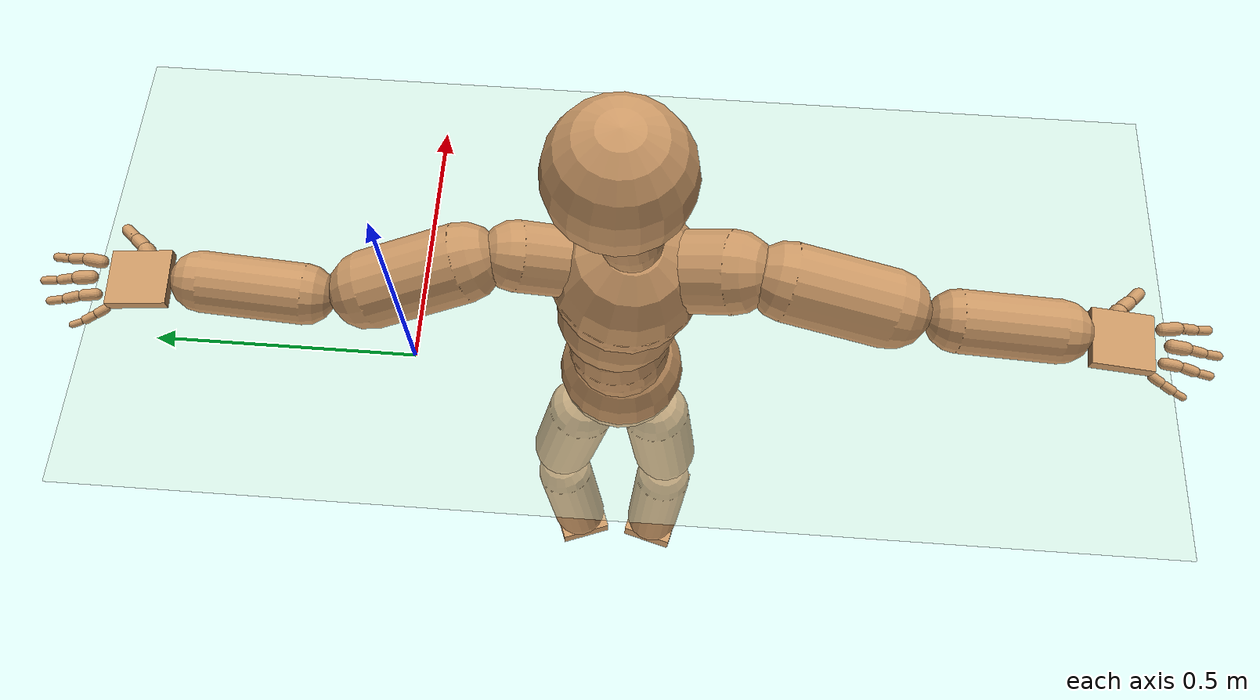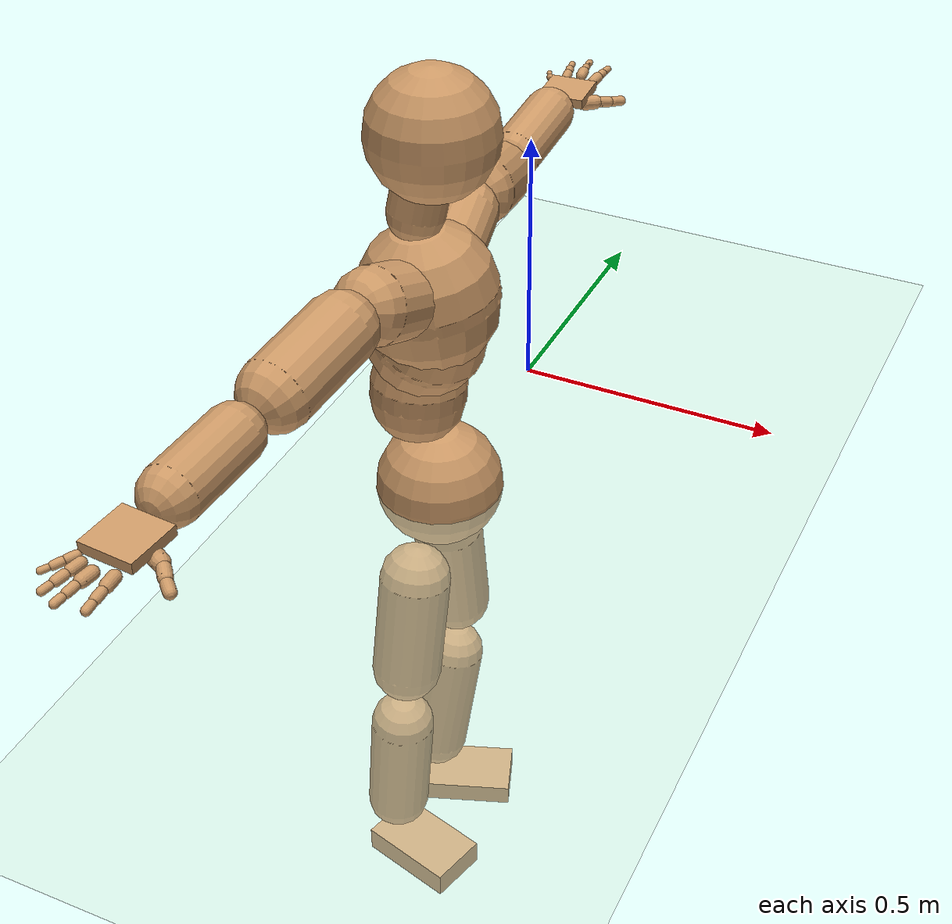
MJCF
<mujoco model="humanoid">
  <compiler coordinate="local" angle="radian"/>
  <default>
    <joint damping="0.0" armature="0.01" stiffness="0.0" limited="true"/>
    <geom conaffinity="1" condim="3" contype="7" margin="0.001" rgba="0.8 0.6 .4 1"/>
  </default>
  <asset>
    <texture type="skybox" builtin="gradient" rgb1=".4 .5 .6" rgb2="0 0 0" width="100" height="100"/>
    <texture builtin="flat" height="1278" mark="cross" markrgb="1 1 1" name="texgeom" random="0.01" rgb1="0.8 0.6 0.4" rgb2="0.8 0.6 0.4" type="cube" width="127"/>
    <texture builtin="checker" height="100" name="texplane" rgb1="0 0 0" rgb2="0.8 0.8 0.8" type="2d" width="100"/>
    <material name="MatPlane" reflectance="0.5" shininess="1" specular="1" texrepeat="60 60" texture="texplane"/>
    <material name="geom" texture="texgeom" texuniform="true"/>
  </asset>
  <worldbody>
    <light cutoff="100" diffuse="1 1 1" dir="-0 0 -1.3" directional="true" exponent="1" pos="0 0 1.3" specular=".1 .1 .1"/>
    <geom conaffinity="1" condim="3" name="floor" pos="0 0 0" rgba="0.8 0.9 0.8 1" size="100 100 .2" type="plane" material="MatPlane"/>
    <body name="Pelvis" pos="0.0017 -0.3938 0.0051">
      <freejoint name="Pelvis"/>
      <geom type="sphere" contype="1" conaffinity="1" density="500" size="0.1154" pos="0.0000 0.0000 0.0000" name="Pelvis"/>
      <body name="L_Hip" pos="-0.0233 0.062 -0.0989">
        <joint name="L_Hip_x" type="hinge" pos="0 0 0" axis="1 0 0" stiffness="800" damping="80" armature="0.02" range="-180.0000 180.0000"/>
        <joint name="L_Hip_y" type="hinge" pos="0 0 0" axis="0 1 0" stiffness="800" damping="80" armature="0.02" range="-180.0000 180.0000"/>
        <joint name="L_Hip_z" type="hinge" pos="0 0 0" axis="0 0 1" stiffness="800" damping="80" armature="0.02" range="-180.0000 180.0000"/>
        <geom type="capsule" contype="1" conaffinity="1" density="500" fromto="-0.0015 0.0132 -0.0726 -0.0061 0.0529 -0.2902" size="0.0659" name="L_Hip"/>
        <body name="L_Knee" pos="-0.0076 0.0662 -0.3628">
          <joint name="L_Knee_x" type="hinge" pos="0 0 0" axis="1 0 0" stiffness="800" damping="80" armature="0.02" range="-180.0000 180.0000"/>
          <joint name="L_Knee_y" type="hinge" pos="0 0 0" axis="0 1 0" stiffness="800" damping="80" armature="0.02" range="-180.0000 180.0000"/>
          <joint name="L_Knee_z" type="hinge" pos="0 0 0" axis="0 0 1" stiffness="800" damping="80" armature="0.02" range="-180.0000 180.0000"/>
          <geom type="capsule" contype="1" conaffinity="1" density="500" fromto="-0.0088 -0.0107 -0.0791 -0.0351 -0.0427 -0.3165" size="0.0608" name="L_Knee"/>
          <body name="L_Ankle" pos="-0.0438 -0.0534 -0.3956">
            <joint name="L_Ankle_x" type="hinge" pos="0 0 0" axis="1 0 0" stiffness="800" damping="80" armature="0.02" range="-180.0000 180.0000"/>
            <joint name="L_Ankle_y" type="hinge" pos="0 0 0" axis="0 1 0" stiffness="800" damping="80" armature="0.02" range="-180.0000 180.0000"/>
            <joint name="L_Ankle_z" type="hinge" pos="0 0 0" axis="0 0 1" stiffness="800" damping="80" armature="0.02" range="-180.0000 180.0000"/>
            <geom type="box" contype="1" conaffinity="1" density="500" pos="0.0683 0.0250 -0.0285" size="0.0962 0.0574 0.0222" quat="0.9847 0.0000 0.0000 0.1744" name="L_Ankle"/>
            <body name="L_Toe" pos="0.1367 0.05 -0.057">
              <joint name="L_Toe_x" type="hinge" pos="0 0 0" axis="1 0 0" stiffness="500" damping="50" armature="0.02" range="-180.0000 180.0000"/>
              <joint name="L_Toe_y" type="hinge" pos="0 0 0" axis="0 1 0" stiffness="500" damping="50" armature="0.02" range="-180.0000 180.0000"/>
              <joint name="L_Toe_z" type="hinge" pos="0 0 0" axis="0 0 1" stiffness="500" damping="50" armature="0.02" range="-180.0000 180.0000"/>
              <geom type="box" contype="1" conaffinity="1" density="500" pos="0.0000 0.0000 0.0292" size="0.0011 0.0027 0.0011" quat="0.9840 0.0000 0.0000 0.1784" name="L_Toe"/>
            </body>
          </body>
        </body>
      </body>
      <body name="R_Hip" pos="-0.0146 -0.0646 -0.11">
        <joint name="R_Hip_x" type="hinge" pos="0 0 0" axis="1 0 0" stiffness="800" damping="80" armature="0.02" range="-180.0000 180.0000"/>
        <joint name="R_Hip_y" type="hinge" pos="0 0 0" axis="0 1 0" stiffness="800" damping="80" armature="0.02" range="-180.0000 180.0000"/>
        <joint name="R_Hip_z" type="hinge" pos="0 0 0" axis="0 0 1" stiffness="800" damping="80" armature="0.02" range="-180.0000 180.0000"/>
        <geom type="capsule" contype="1" conaffinity="1" density="500" fromto="-0.0034 -0.0096 -0.0693 -0.0135 -0.0383 -0.2773" size="0.0659" name="R_Hip"/>
        <body name="R_Knee" pos="-0.0169 -0.0478 -0.3467">
          <joint name="R_Knee_x" type="hinge" pos="0 0 0" axis="1 0 0" stiffness="800" damping="80" armature="0.02" range="-180.0000 180.0000"/>
          <joint name="R_Knee_y" type="hinge" pos="0 0 0" axis="0 1 0" stiffness="800" damping="80" armature="0.02" range="-180.0000 180.0000"/>
          <joint name="R_Knee_z" type="hinge" pos="0 0 0" axis="0 0 1" stiffness="800" damping="80" armature="0.02" range="-180.0000 180.0000"/>
          <geom type="capsule" contype="1" conaffinity="1" density="500" fromto="-0.0086 0.0041 -0.0815 -0.0344 0.0165 -0.3262" size="0.0608" name="R_Knee"/>
          <body name="R_Ankle" pos="-0.043 0.0207 -0.4077">
            <joint name="R_Ankle_x" type="hinge" pos="0 0 0" axis="1 0 0" stiffness="800" damping="80" armature="0.02" range="-180.0000 180.0000"/>
            <joint name="R_Ankle_y" type="hinge" pos="0 0 0" axis="0 1 0" stiffness="800" damping="80" armature="0.02" range="-180.0000 180.0000"/>
            <joint name="R_Ankle_z" type="hinge" pos="0 0 0" axis="0 0 1" stiffness="800" damping="80" armature="0.02" range="-180.0000 180.0000"/>
            <geom type="box" contype="1" conaffinity="1" density="500" pos="0.0718 -0.0195 -0.0279" size="0.0962 0.0574 0.0264" quat="0.9913 0.0000 0.0000 -0.1318" name="R_Ankle"/>
            <body name="R_Toe" pos="0.1437 -0.0389 -0.0559">
              <joint name="R_Toe_x" type="hinge" pos="0 0 0" axis="1 0 0" stiffness="500" damping="50" armature="0.02" range="-180.0000 180.0000"/>
              <joint name="R_Toe_y" type="hinge" pos="0 0 0" axis="0 1 0" stiffness="500" damping="50" armature="0.02" range="-180.0000 180.0000"/>
              <joint name="R_Toe_z" type="hinge" pos="0 0 0" axis="0 0 1" stiffness="500" damping="50" armature="0.02" range="-180.0000 180.0000"/>
              <geom type="box" contype="1" conaffinity="1" density="500" pos="0.0000 0.0000 0.0245" size="0.0011 0.0027 0.0011" quat="0.9923 0.0000 0.0000 -0.1238" name="R_Toe"/>
            </body>
          </body>
        </body>
      </body>
      <body name="Torso" pos="-0.0417 -0.0018 0.1127">
        <joint name="Torso_x" type="hinge" pos="0 0 0" axis="1 0 0" stiffness="1000" damping="100" armature="0.02" range="-180.0000 180.0000"/>
        <joint name="Torso_y" type="hinge" pos="0 0 0" axis="0 1 0" stiffness="1000" damping="100" armature="0.02" range="-180.0000 180.0000"/>
        <joint name="Torso_z" type="hinge" pos="0 0 0" axis="0 0 1" stiffness="1000" damping="100" armature="0.02" range="-180.0000 180.0000"/>
        <geom type="capsule" contype="1" conaffinity="1" density="500" fromto="0.0030 0.0087 0.0959 0.0020 0.0058 0.0640" size="0.086" name="Torso"/>
        <body name="Spine" pos="0.0049 0.0145 0.1599">
          <joint name="Spine_x" type="hinge" pos="0 0 0" axis="1 0 0" stiffness="1000" damping="100" armature="0.02" range="-180.0000 180.0000"/>
          <joint name="Spine_y" type="hinge" pos="0 0 0" axis="0 1 0" stiffness="1000" damping="100" armature="0.02" range="-180.0000 180.0000"/>
          <joint name="Spine_z" type="hinge" pos="0 0 0" axis="0 0 1" stiffness="1000" damping="100" armature="0.02" range="-180.0000 180.0000"/>
          <geom type="capsule" contype="1" conaffinity="1" density="500" fromto="0.0199 -0.0068 0.0380 0.0132 -0.0045 0.0253" size="0.104" name="Spine"/>
          <body name="Chest" pos="0.0331 -0.0113 0.0633">
            <joint name="Chest_x" type="hinge" pos="0 0 0" axis="1 0 0" stiffness="1000" damping="100" armature="0.02" range="-180.0000 180.0000"/>
            <joint name="Chest_y" type="hinge" pos="0 0 0" axis="0 1 0" stiffness="1000" damping="100" armature="0.02" range="-180.0000 180.0000"/>
            <joint name="Chest_z" type="hinge" pos="0 0 0" axis="0 0 1" stiffness="1000" damping="100" armature="0.02" range="-180.0000 180.0000"/>
            <geom type="capsule" contype="1" conaffinity="1" density="500" fromto="-0.0076 -0.0041 0.0668 -0.0051 -0.0028 0.0445" size="0.1212" name="Chest"/>
            <body name="Neck" pos="-0.0296 -0.0128 0.1734">
              <joint name="Neck_x" type="hinge" pos="0 0 0" axis="1 0 0" stiffness="500" damping="50" armature="0.02" range="-180.0000 180.0000"/>
              <joint name="Neck_y" type="hinge" pos="0 0 0" axis="0 1 0" stiffness="500" damping="50" armature="0.02" range="-180.0000 180.0000"/>
              <joint name="Neck_z" type="hinge" pos="0 0 0" axis="0 0 1" stiffness="500" damping="50" armature="0.02" range="-180.0000 180.0000"/>
              <geom type="capsule" contype="1" conaffinity="1" density="500" fromto="0.0057 0.0053 0.0338 0.0227 0.0212 0.1354" size="0.049" name="Neck"/>
              <body name="Head" pos="0.0283 0.0266 0.1692">
                <joint name="Head_x" type="hinge" pos="0 0 0" axis="1 0 0" stiffness="500" damping="50" armature="0.02" range="-180.0000 180.0000"/>
                <joint name="Head_y" type="hinge" pos="0 0 0" axis="0 1 0" stiffness="500" damping="50" armature="0.02" range="-180.0000 180.0000"/>
                <joint name="Head_z" type="hinge" pos="0 0 0" axis="0 0 1" stiffness="500" damping="50" armature="0.02" range="-180.0000 180.0000"/>
                <geom type="sphere" contype="1" conaffinity="1" density="500" size="0.1115" pos="0.0000 0.0000 0.0000" name="Head"/>
              </body>
            </body>
            <body name="L_Thorax" pos="-0.0028 0.045 0.0796">
              <joint name="L_Thorax_x" type="hinge" pos="0 0 0" axis="1 0 0" stiffness="500" damping="50" armature="0.02" range="-180.0000 180.0000"/>
              <joint name="L_Thorax_y" type="hinge" pos="0 0 0" axis="0 1 0" stiffness="500" damping="50" armature="0.02" range="-180.0000 180.0000"/>
              <joint name="L_Thorax_z" type="hinge" pos="0 0 0" axis="0 0 1" stiffness="500" damping="50" armature="0.02" range="-180.0000 180.0000"/>
              <geom type="capsule" contype="1" conaffinity="1" density="500" fromto="-0.0038 0.0307 0.0110 -0.0152 0.1228 0.0440" size="0.0558" name="L_Thorax"/>
              <body name="L_Shoulder" pos="-0.0189 0.1535 0.055">
                <joint name="L_Shoulder_x" type="hinge" pos="0 0 0" axis="1 0 0" stiffness="500" damping="50" armature="0.02" range="-180.0000 180.0000"/>
                <joint name="L_Shoulder_y" type="hinge" pos="0 0 0" axis="0 1 0" stiffness="500" damping="50" armature="0.02" range="-180.0000 180.0000"/>
                <joint name="L_Shoulder_z" type="hinge" pos="0 0 0" axis="0 0 1" stiffness="500" damping="50" armature="0.02" range="-180.0000 180.0000"/>
                <geom type="capsule" contype="1" conaffinity="1" density="500" fromto="-0.0111 0.0492 -0.0154 -0.0446 0.1969 -0.0618" size="0.0629" name="L_Shoulder"/>
                <body name="L_Elbow" pos="-0.0557 0.2461 -0.0772">
                  <joint name="L_Elbow_x" type="hinge" pos="0 0 0" axis="1 0 0" stiffness="500" damping="50" armature="0.02" range="-720.0000 720.0000"/>
                  <joint name="L_Elbow_y" type="hinge" pos="0 0 0" axis="0 1 0" stiffness="500" damping="50" armature="0.02" range="-720.0000 720.0000"/>
                  <joint name="L_Elbow_z" type="hinge" pos="0 0 0" axis="0 0 1" stiffness="500" damping="50" armature="0.02" range="-720.0000 720.0000"/>
                  <geom type="capsule" contype="1" conaffinity="1" density="500" fromto="0.0006 0.0522 0.0060 0.0023 0.2089 0.0238" size="0.0486" name="L_Elbow"/>
                  <body name="L_Wrist" pos="0.0029 0.2611 0.0298">
                    <joint name="L_Wrist_x" type="hinge" pos="0 0 0" axis="1 0 0" stiffness="300" damping="30" armature="0.02" range="-180.0000 180.0000"/>
                    <joint name="L_Wrist_y" type="hinge" pos="0 0 0" axis="0 1 0" stiffness="300" damping="30" armature="0.02" range="-180.0000 180.0000"/>
                    <joint name="L_Wrist_z" type="hinge" pos="0 0 0" axis="0 0 1" stiffness="300" damping="30" armature="0.02" range="-180.0000 180.0000"/>
                    <geom type="box" contype="1" conaffinity="1" density="500" pos="-0.0036 0.0454 -0.0058" size="0.0466 0.0457 0.0092" quat="0.7342 0.0000 0.0000 -0.6790" name="L_Wrist"/>
                    <body name="L_Index1" pos="0.0224 0.1068 -0.0084">
                      <joint name="L_Index1_x" type="hinge" pos="0 0 0" axis="1 0 0" stiffness="100" damping="10" armature="0.02" range="-180.0000 180.0000"/>
                      <joint name="L_Index1_y" type="hinge" pos="0 0 0" axis="0 1 0" stiffness="100" damping="10" armature="0.02" range="-180.0000 180.0000"/>
                      <joint name="L_Index1_z" type="hinge" pos="0 0 0" axis="0 0 1" stiffness="100" damping="10" armature="0.02" range="-180.0000 180.0000"/>
                      <geom type="capsule" contype="1" conaffinity="1" density="500" fromto="0.0008 0.0068 0.0004 0.0031 0.0271 0.0018" size="0.0105" name="L_Index1"/>
                      <body name="L_Index2" pos="0.0039 0.0339 0.0022">
                        <joint name="L_Index2_x" type="hinge" pos="0 0 0" axis="1 0 0" stiffness="100" damping="10" armature="0.02" range="-180.0000 180.0000"/>
                        <joint name="L_Index2_y" type="hinge" pos="0 0 0" axis="0 1 0" stiffness="100" damping="10" armature="0.02" range="-180.0000 180.0000"/>
                        <joint name="L_Index2_z" type="hinge" pos="0 0 0" axis="0 0 1" stiffness="100" damping="10" armature="0.02" range="-180.0000 180.0000"/>
                        <geom type="capsule" contype="1" conaffinity="1" density="500" fromto="-0.0001 0.0047 -0.0005 -0.0003 0.0190 -0.0022" size="0.0084" name="L_Index2"/>
                        <body name="L_Index3" pos="-0.0003 0.0237 -0.0027">
                          <joint name="L_Index3_x" type="hinge" pos="0 0 0" axis="1 0 0" stiffness="100" damping="10" armature="0.02" range="-180.0000 180.0000"/>
                          <joint name="L_Index3_y" type="hinge" pos="0 0 0" axis="0 1 0" stiffness="100" damping="10" armature="0.02" range="-180.0000 180.0000"/>
                          <joint name="L_Index3_z" type="hinge" pos="0 0 0" axis="0 0 1" stiffness="100" damping="10" armature="0.02" range="-180.0000 180.0000"/>
                          <geom type="capsule" contype="1" conaffinity="1" density="500" fromto="0.0003 0.0051 -0.0001 0.0013 0.0206 -0.0006" size="0.0071" name="L_Index3"/>
                        </body>
                      </body>
                    </body>
                    <body name="L_Middle1" pos="-0.0048 0.1154 -0.0049">
                      <joint name="L_Middle1_x" type="hinge" pos="0 0 0" axis="1 0 0" stiffness="100" damping="10" armature="0.02" range="-180.0000 180.0000"/>
                      <joint name="L_Middle1_y" type="hinge" pos="0 0 0" axis="0 1 0" stiffness="100" damping="10" armature="0.02" range="-180.0000 180.0000"/>
                      <joint name="L_Middle1_z" type="hinge" pos="0 0 0" axis="0 0 1" stiffness="100" damping="10" armature="0.02" range="-180.0000 180.0000"/>
                      <geom type="capsule" contype="1" conaffinity="1" density="500" fromto="-0.0009 0.0065 0.0002 -0.0037 0.0259 0.0007" size="0.0107" name="L_Middle1"/>
                      <body name="L_Middle2" pos="-0.0046 0.0323 0.0009">
                        <joint name="L_Middle2_x" type="hinge" pos="0 0 0" axis="1 0 0" stiffness="100" damping="10" armature="0.02" range="-180.0000 180.0000"/>
                        <joint name="L_Middle2_y" type="hinge" pos="0 0 0" axis="0 1 0" stiffness="100" damping="10" armature="0.02" range="-180.0000 180.0000"/>
                        <joint name="L_Middle2_z" type="hinge" pos="0 0 0" axis="0 0 1" stiffness="100" damping="10" armature="0.02" range="-180.0000 180.0000"/>
                        <geom type="capsule" contype="1" conaffinity="1" density="500" fromto="-0.0009 0.0049 -0.0005 -0.0036 0.0197 -0.0021" size="0.0078" name="L_Middle2"/>
                        <body name="L_Middle3" pos="-0.0045 0.0246 -0.0026">
                          <joint name="L_Middle3_x" type="hinge" pos="0 0 0" axis="1 0 0" stiffness="100" damping="10" armature="0.02" range="-180.0000 180.0000"/>
                          <joint name="L_Middle3_y" type="hinge" pos="0 0 0" axis="0 1 0" stiffness="100" damping="10" armature="0.02" range="-180.0000 180.0000"/>
                          <joint name="L_Middle3_z" type="hinge" pos="0 0 0" axis="0 0 1" stiffness="100" damping="10" armature="0.02" range="-180.0000 180.0000"/>
                          <geom type="capsule" contype="1" conaffinity="1" density="500" fromto="-0.0005 0.0053 -0.0001 -0.0020 0.0213 -0.0005" size="0.0067" name="L_Middle3"/>
                        </body>
                      </body>
                    </body>
                    <body name="L_Pinky1" pos="-0.0512 0.0884 -0.015">
                      <joint name="L_Pinky1_x" type="hinge" pos="0 0 0" axis="1 0 0" stiffness="100" damping="10" armature="0.02" range="-180.0000 180.0000"/>
                      <joint name="L_Pinky1_y" type="hinge" pos="0 0 0" axis="0 1 0" stiffness="100" damping="10" armature="0.02" range="-180.0000 180.0000"/>
                      <joint name="L_Pinky1_z" type="hinge" pos="0 0 0" axis="0 0 1" stiffness="100" damping="10" armature="0.02" range="-180.0000 180.0000"/>
                      <geom type="capsule" contype="1" conaffinity="1" density="500" fromto="-0.0024 0.0035 -0.0004 -0.0098 0.0140 -0.0016" size="0.0075" name="L_Pinky1"/>
                      <body name="L_Pinky2" pos="-0.0122 0.0174 -0.002">
                        <joint name="L_Pinky2_x" type="hinge" pos="0 0 0" axis="1 0 0" stiffness="100" damping="10" armature="0.02" range="-180.0000 180.0000"/>
                        <joint name="L_Pinky2_y" type="hinge" pos="0 0 0" axis="0 1 0" stiffness="100" damping="10" armature="0.02" range="-180.0000 180.0000"/>
                        <joint name="L_Pinky2_z" type="hinge" pos="0 0 0" axis="0 0 1" stiffness="100" damping="10" armature="0.02" range="-180.0000 180.0000"/>
                        <geom type="capsule" contype="1" conaffinity="1" density="500" fromto="-0.0022 0.0034 -0.0005 -0.0089 0.0137 -0.0018" size="0.0071" name="L_Pinky2"/>
                        <body name="L_Pinky3" pos="-0.0112 0.0171 -0.0023">
                          <joint name="L_Pinky3_x" type="hinge" pos="0 0 0" axis="1 0 0" stiffness="100" damping="10" armature="0.02" range="-180.0000 180.0000"/>
                          <joint name="L_Pinky3_y" type="hinge" pos="0 0 0" axis="0 1 0" stiffness="100" damping="10" armature="0.02" range="-180.0000 180.0000"/>
                          <joint name="L_Pinky3_z" type="hinge" pos="0 0 0" axis="0 0 1" stiffness="100" damping="10" armature="0.02" range="-180.0000 180.0000"/>
                          <geom type="capsule" contype="1" conaffinity="1" density="500" fromto="-0.0018 0.0038 -0.0001 -0.0073 0.0153 -0.0002" size="0.0053" name="L_Pinky3"/>
                        </body>
                      </body>
                    </body>
                    <body name="L_Ring1" pos="-0.0322 0.1028 -0.0083">
                      <joint name="L_Ring1_x" type="hinge" pos="0 0 0" axis="1 0 0" stiffness="100" damping="10" armature="0.02" range="-180.0000 180.0000"/>
                      <joint name="L_Ring1_y" type="hinge" pos="0 0 0" axis="0 1 0" stiffness="100" damping="10" armature="0.02" range="-180.0000 180.0000"/>
                      <joint name="L_Ring1_z" type="hinge" pos="0 0 0" axis="0 0 1" stiffness="100" damping="10" armature="0.02" range="-180.0000 180.0000"/>
                      <geom type="capsule" contype="1" conaffinity="1" density="500" fromto="-0.0010 0.0060 0.0002 -0.0041 0.0241 0.0007" size="0.0091" name="L_Ring1"/>
                      <body name="L_Ring2" pos="-0.0051 0.0301 0.0009">
                        <joint name="L_Ring2_x" type="hinge" pos="0 0 0" axis="1 0 0" stiffness="100" damping="10" armature="0.02" range="-180.0000 180.0000"/>
                        <joint name="L_Ring2_y" type="hinge" pos="0 0 0" axis="0 1 0" stiffness="100" damping="10" armature="0.02" range="-180.0000 180.0000"/>
                        <joint name="L_Ring2_z" type="hinge" pos="0 0 0" axis="0 0 1" stiffness="100" damping="10" armature="0.02" range="-180.0000 180.0000"/>
                        <geom type="capsule" contype="1" conaffinity="1" density="500" fromto="-0.0014 0.0048 -0.0005 -0.0056 0.0193 -0.0020" size="0.0083" name="L_Ring2"/>
                        <body name="L_Ring3" pos="-0.0069 0.0242 -0.0025">
                          <joint name="L_Ring3_x" type="hinge" pos="0 0 0" axis="1 0 0" stiffness="100" damping="10" armature="0.02" range="-180.0000 180.0000"/>
                          <joint name="L_Ring3_y" type="hinge" pos="0 0 0" axis="0 1 0" stiffness="100" damping="10" armature="0.02" range="-180.0000 180.0000"/>
                          <joint name="L_Ring3_z" type="hinge" pos="0 0 0" axis="0 0 1" stiffness="100" damping="10" armature="0.02" range="-180.0000 180.0000"/>
                          <geom type="capsule" contype="1" conaffinity="1" density="500" fromto="-0.0010 0.0052 -0.0001 -0.0040 0.0209 -0.0004" size="0.0064" name="L_Ring3"/>
                        </body>
                      </body>
                    </body>
                    <body name="L_Thumb1" pos="0.0302 0.0403 -0.0219">
                      <joint name="L_Thumb1_x" type="hinge" pos="0 0 0" axis="1 0 0" stiffness="100" damping="10" armature="0.02" range="-180.0000 180.0000"/>
                      <joint name="L_Thumb1_y" type="hinge" pos="0 0 0" axis="0 1 0" stiffness="100" damping="10" armature="0.02" range="-180.0000 180.0000"/>
                      <joint name="L_Thumb1_z" type="hinge" pos="0 0 0" axis="0 0 1" stiffness="100" damping="10" armature="0.02" range="-180.0000 180.0000"/>
                      <geom type="capsule" contype="1" conaffinity="1" density="500" fromto="0.0058 0.0033 0.0005 0.0231 0.0133 0.0021" size="0.014" name="L_Thumb1"/>
                      <body name="L_Thumb2" pos="0.0289 0.0166 0.0026">
                        <joint name="L_Thumb2_x" type="hinge" pos="0 0 0" axis="1 0 0" stiffness="100" damping="10" armature="0.02" range="-180.0000 180.0000"/>
                        <joint name="L_Thumb2_y" type="hinge" pos="0 0 0" axis="0 1 0" stiffness="100" damping="10" armature="0.02" range="-180.0000 180.0000"/>
                        <joint name="L_Thumb2_z" type="hinge" pos="0 0 0" axis="0 0 1" stiffness="100" damping="10" armature="0.02" range="-180.0000 180.0000"/>
                        <geom type="capsule" contype="1" conaffinity="1" density="500" fromto="0.0035 0.0041 -0.0011 0.0140 0.0164 -0.0042" size="0.011" name="L_Thumb2"/>
                        <body name="L_Thumb3" pos="0.0175 0.0205 -0.0053">
                          <joint name="L_Thumb3_x" type="hinge" pos="0 0 0" axis="1 0 0" stiffness="100" damping="10" armature="0.02" range="-180.0000 180.0000"/>
                          <joint name="L_Thumb3_y" type="hinge" pos="0 0 0" axis="0 1 0" stiffness="100" damping="10" armature="0.02" range="-180.0000 180.0000"/>
                          <joint name="L_Thumb3_z" type="hinge" pos="0 0 0" axis="0 0 1" stiffness="100" damping="10" armature="0.02" range="-180.0000 180.0000"/>
                          <geom type="capsule" contype="1" conaffinity="1" density="500" fromto="0.0039 0.0045 -0.0007 0.0156 0.0180 -0.0026" size="0.0097" name="L_Thumb3"/>
                        </body>
                      </body>
                    </body>
                  </body>
                </body>
              </body>
            </body>
            <body name="R_Thorax" pos="-0.0056 -0.053 0.0807">
              <joint name="R_Thorax_x" type="hinge" pos="0 0 0" axis="1 0 0" stiffness="500" damping="50" armature="0.02" range="-180.0000 180.0000"/>
              <joint name="R_Thorax_y" type="hinge" pos="0 0 0" axis="0 1 0" stiffness="500" damping="50" armature="0.02" range="-180.0000 180.0000"/>
              <joint name="R_Thorax_z" type="hinge" pos="0 0 0" axis="0 0 1" stiffness="500" damping="50" armature="0.02" range="-180.0000 180.0000"/>
              <geom type="capsule" contype="1" conaffinity="1" density="500" fromto="-0.0042 -0.0282 0.0106 -0.0167 -0.1130 0.0424" size="0.0657" name="R_Thorax"/>
              <body name="R_Shoulder" pos="-0.0209 -0.1412 0.0531">
                <joint name="R_Shoulder_x" type="hinge" pos="0 0 0" axis="1 0 0" stiffness="500" damping="50" armature="0.02" range="-180.0000 180.0000"/>
                <joint name="R_Shoulder_y" type="hinge" pos="0 0 0" axis="0 1 0" stiffness="500" damping="50" armature="0.02" range="-180.0000 180.0000"/>
                <joint name="R_Shoulder_z" type="hinge" pos="0 0 0" axis="0 0 1" stiffness="500" damping="50" armature="0.02" range="-180.0000 180.0000"/>
                <geom type="capsule" contype="1" conaffinity="1" density="500" fromto="-0.0073 -0.0528 -0.0083 -0.0292 -0.2114 -0.0331" size="0.0623" name="R_Shoulder"/>
                <body name="R_Elbow" pos="-0.0365 -0.2642 -0.0414">
                  <joint name="R_Elbow_x" type="hinge" pos="0 0 0" axis="1 0 0" stiffness="500" damping="50" armature="0.02" range="-720.0000 720.0000"/>
                  <joint name="R_Elbow_y" type="hinge" pos="0 0 0" axis="0 1 0" stiffness="500" damping="50" armature="0.02" range="-720.0000 720.0000"/>
                  <joint name="R_Elbow_z" type="hinge" pos="0 0 0" axis="0 0 1" stiffness="500" damping="50" armature="0.02" range="-720.0000 720.0000"/>
                  <geom type="capsule" contype="1" conaffinity="1" density="500" fromto="-0.0021 -0.0508 -0.0002 -0.0085 -0.2033 -0.0010" size="0.0497" name="R_Elbow"/>
                  <body name="R_Wrist" pos="-0.0106 -0.2542 -0.0012">
                    <joint name="R_Wrist_x" type="hinge" pos="0 0 0" axis="1 0 0" stiffness="300" damping="30" armature="0.02" range="-180.0000 180.0000"/>
                    <joint name="R_Wrist_y" type="hinge" pos="0 0 0" axis="0 1 0" stiffness="300" damping="30" armature="0.02" range="-180.0000 180.0000"/>
                    <joint name="R_Wrist_z" type="hinge" pos="0 0 0" axis="0 0 1" stiffness="300" damping="30" armature="0.02" range="-180.0000 180.0000"/>
                    <geom type="box" contype="1" conaffinity="1" density="500" pos="-0.0040 -0.0450 -0.0078" size="0.0466 0.0467 0.0094" quat="0.7380 0.0000 0.0000 0.6748" name="R_Wrist"/>
                    <body name="R_Index1" pos="0.0215 -0.1062 -0.0123">
                      <joint name="R_Index1_x" type="hinge" pos="0 0 0" axis="1 0 0" stiffness="100" damping="10" armature="0.02" range="-180.0000 180.0000"/>
                      <joint name="R_Index1_y" type="hinge" pos="0 0 0" axis="0 1 0" stiffness="100" damping="10" armature="0.02" range="-180.0000 180.0000"/>
                      <joint name="R_Index1_z" type="hinge" pos="0 0 0" axis="0 0 1" stiffness="100" damping="10" armature="0.02" range="-180.0000 180.0000"/>
                      <geom type="capsule" contype="1" conaffinity="1" density="500" fromto="0.0008 -0.0068 0.0004 0.0031 -0.0271 0.0018" size="0.0105" name="R_Index1"/>
                      <body name="R_Index2" pos="0.0039 -0.0339 0.0022">
                        <joint name="R_Index2_x" type="hinge" pos="0 0 0" axis="1 0 0" stiffness="100" damping="10" armature="0.02" range="-180.0000 180.0000"/>
                        <joint name="R_Index2_y" type="hinge" pos="0 0 0" axis="0 1 0" stiffness="100" damping="10" armature="0.02" range="-180.0000 180.0000"/>
                        <joint name="R_Index2_z" type="hinge" pos="0 0 0" axis="0 0 1" stiffness="100" damping="10" armature="0.02" range="-180.0000 180.0000"/>
                        <geom type="capsule" contype="1" conaffinity="1" density="500" fromto="-0.0001 -0.0047 -0.0005 -0.0003 -0.0190 -0.0022" size="0.0084" name="R_Index2"/>
                        <body name="R_Index3" pos="-0.0003 -0.0237 -0.0027">
                          <joint name="R_Index3_x" type="hinge" pos="0 0 0" axis="1 0 0" stiffness="100" damping="10" armature="0.02" range="-180.0000 180.0000"/>
                          <joint name="R_Index3_y" type="hinge" pos="0 0 0" axis="0 1 0" stiffness="100" damping="10" armature="0.02" range="-180.0000 180.0000"/>
                          <joint name="R_Index3_z" type="hinge" pos="0 0 0" axis="0 0 1" stiffness="100" damping="10" armature="0.02" range="-180.0000 180.0000"/>
                          <geom type="capsule" contype="1" conaffinity="1" density="500" fromto="0.0003 -0.0043 -0.0001 0.0013 -0.0174 -0.0006" size="0.0074" name="R_Index3"/>
                        </body>
                      </body>
                    </body>
                    <body name="R_Middle1" pos="-0.0057 -0.1147 -0.0089">
                      <joint name="R_Middle1_x" type="hinge" pos="0 0 0" axis="1 0 0" stiffness="100" damping="10" armature="0.02" range="-180.0000 180.0000"/>
                      <joint name="R_Middle1_y" type="hinge" pos="0 0 0" axis="0 1 0" stiffness="100" damping="10" armature="0.02" range="-180.0000 180.0000"/>
                      <joint name="R_Middle1_z" type="hinge" pos="0 0 0" axis="0 0 1" stiffness="100" damping="10" armature="0.02" range="-180.0000 180.0000"/>
                      <geom type="capsule" contype="1" conaffinity="1" density="500" fromto="-0.0009 -0.0065 0.0002 -0.0037 -0.0259 0.0007" size="0.0107" name="R_Middle1"/>
                      <body name="R_Middle2" pos="-0.0046 -0.0323 0.0009">
                        <joint name="R_Middle2_x" type="hinge" pos="0 0 0" axis="1 0 0" stiffness="100" damping="10" armature="0.02" range="-180.0000 180.0000"/>
                        <joint name="R_Middle2_y" type="hinge" pos="0 0 0" axis="0 1 0" stiffness="100" damping="10" armature="0.02" range="-180.0000 180.0000"/>
                        <joint name="R_Middle2_z" type="hinge" pos="0 0 0" axis="0 0 1" stiffness="100" damping="10" armature="0.02" range="-180.0000 180.0000"/>
                        <geom type="capsule" contype="1" conaffinity="1" density="500" fromto="-0.0009 -0.0049 -0.0005 -0.0036 -0.0197 -0.0021" size="0.0078" name="R_Middle2"/>
                        <body name="R_Middle3" pos="-0.0045 -0.0246 -0.0026">
                          <joint name="R_Middle3_x" type="hinge" pos="0 0 0" axis="1 0 0" stiffness="100" damping="10" armature="0.02" range="-180.0000 180.0000"/>
                          <joint name="R_Middle3_y" type="hinge" pos="0 0 0" axis="0 1 0" stiffness="100" damping="10" armature="0.02" range="-180.0000 180.0000"/>
                          <joint name="R_Middle3_z" type="hinge" pos="0 0 0" axis="0 0 1" stiffness="100" damping="10" armature="0.02" range="-180.0000 180.0000"/>
                          <geom type="capsule" contype="1" conaffinity="1" density="500" fromto="-0.0005 -0.0045 -0.0001 -0.0020 -0.0181 -0.0005" size="0.007" name="R_Middle3"/>
                        </body>
                      </body>
                    </body>
                    <body name="R_Pinky1" pos="-0.0521 -0.0878 -0.0189">
                      <joint name="R_Pinky1_x" type="hinge" pos="0 0 0" axis="1 0 0" stiffness="100" damping="10" armature="0.02" range="-180.0000 180.0000"/>
                      <joint name="R_Pinky1_y" type="hinge" pos="0 0 0" axis="0 1 0" stiffness="100" damping="10" armature="0.02" range="-180.0000 180.0000"/>
                      <joint name="R_Pinky1_z" type="hinge" pos="0 0 0" axis="0 0 1" stiffness="100" damping="10" armature="0.02" range="-180.0000 180.0000"/>
                      <geom type="capsule" contype="1" conaffinity="1" density="500" fromto="-0.0024 -0.0035 -0.0004 -0.0098 -0.0140 -0.0016" size="0.0075" name="R_Pinky1"/>
                      <body name="R_Pinky2" pos="-0.0122 -0.0174 -0.002">
                        <joint name="R_Pinky2_x" type="hinge" pos="0 0 0" axis="1 0 0" stiffness="100" damping="10" armature="0.02" range="-180.0000 180.0000"/>
                        <joint name="R_Pinky2_y" type="hinge" pos="0 0 0" axis="0 1 0" stiffness="100" damping="10" armature="0.02" range="-180.0000 180.0000"/>
                        <joint name="R_Pinky2_z" type="hinge" pos="0 0 0" axis="0 0 1" stiffness="100" damping="10" armature="0.02" range="-180.0000 180.0000"/>
                        <geom type="capsule" contype="1" conaffinity="1" density="500" fromto="-0.0022 -0.0034 -0.0005 -0.0089 -0.0137 -0.0018" size="0.0071" name="R_Pinky2"/>
                        <body name="R_Pinky3" pos="-0.0112 -0.0171 -0.0023">
                          <joint name="R_Pinky3_x" type="hinge" pos="0 0 0" axis="1 0 0" stiffness="100" damping="10" armature="0.02" range="-180.0000 180.0000"/>
                          <joint name="R_Pinky3_y" type="hinge" pos="0 0 0" axis="0 1 0" stiffness="100" damping="10" armature="0.02" range="-180.0000 180.0000"/>
                          <joint name="R_Pinky3_z" type="hinge" pos="0 0 0" axis="0 0 1" stiffness="100" damping="10" armature="0.02" range="-180.0000 180.0000"/>
                          <geom type="capsule" contype="1" conaffinity="1" density="500" fromto="-0.0018 -0.0030 -0.0001 -0.0073 -0.0121 -0.0002" size="0.0055" name="R_Pinky3"/>
                        </body>
                      </body>
                    </body>
                    <body name="R_Ring1" pos="-0.0332 -0.1021 -0.0123">
                      <joint name="R_Ring1_x" type="hinge" pos="0 0 0" axis="1 0 0" stiffness="100" damping="10" armature="0.02" range="-180.0000 180.0000"/>
                      <joint name="R_Ring1_y" type="hinge" pos="0 0 0" axis="0 1 0" stiffness="100" damping="10" armature="0.02" range="-180.0000 180.0000"/>
                      <joint name="R_Ring1_z" type="hinge" pos="0 0 0" axis="0 0 1" stiffness="100" damping="10" armature="0.02" range="-180.0000 180.0000"/>
                      <geom type="capsule" contype="1" conaffinity="1" density="500" fromto="-0.0010 -0.0060 0.0002 -0.0041 -0.0241 0.0007" size="0.0091" name="R_Ring1"/>
                      <body name="R_Ring2" pos="-0.0051 -0.0301 0.0009">
                        <joint name="R_Ring2_x" type="hinge" pos="0 0 0" axis="1 0 0" stiffness="100" damping="10" armature="0.02" range="-180.0000 180.0000"/>
                        <joint name="R_Ring2_y" type="hinge" pos="0 0 0" axis="0 1 0" stiffness="100" damping="10" armature="0.02" range="-180.0000 180.0000"/>
                        <joint name="R_Ring2_z" type="hinge" pos="0 0 0" axis="0 0 1" stiffness="100" damping="10" armature="0.02" range="-180.0000 180.0000"/>
                        <geom type="capsule" contype="1" conaffinity="1" density="500" fromto="-0.0014 -0.0048 -0.0005 -0.0056 -0.0193 -0.0020" size="0.0083" name="R_Ring2"/>
                        <body name="R_Ring3" pos="-0.0069 -0.0242 -0.0025">
                          <joint name="R_Ring3_x" type="hinge" pos="0 0 0" axis="1 0 0" stiffness="100" damping="10" armature="0.02" range="-180.0000 180.0000"/>
                          <joint name="R_Ring3_y" type="hinge" pos="0 0 0" axis="0 1 0" stiffness="100" damping="10" armature="0.02" range="-180.0000 180.0000"/>
                          <joint name="R_Ring3_z" type="hinge" pos="0 0 0" axis="0 0 1" stiffness="100" damping="10" armature="0.02" range="-180.0000 180.0000"/>
                          <geom type="capsule" contype="1" conaffinity="1" density="500" fromto="-0.0010 -0.0044 -0.0001 -0.0040 -0.0177 -0.0004" size="0.0066" name="R_Ring3"/>
                        </body>
                      </body>
                    </body>
                    <body name="R_Thumb1" pos="0.0292 -0.0397 -0.0258">
                      <joint name="R_Thumb1_x" type="hinge" pos="0 0 0" axis="1 0 0" stiffness="100" damping="10" armature="0.02" range="-180.0000 180.0000"/>
                      <joint name="R_Thumb1_y" type="hinge" pos="0 0 0" axis="0 1 0" stiffness="100" damping="10" armature="0.02" range="-180.0000 180.0000"/>
                      <joint name="R_Thumb1_z" type="hinge" pos="0 0 0" axis="0 0 1" stiffness="100" damping="10" armature="0.02" range="-180.0000 180.0000"/>
                      <geom type="capsule" contype="1" conaffinity="1" density="500" fromto="0.0058 -0.0033 0.0005 0.0231 -0.0133 0.0021" size="0.014" name="R_Thumb1"/>
                      <body name="R_Thumb2" pos="0.0289 -0.0166 0.0026">
                        <joint name="R_Thumb2_x" type="hinge" pos="0 0 0" axis="1 0 0" stiffness="100" damping="10" armature="0.02" range="-180.0000 180.0000"/>
                        <joint name="R_Thumb2_y" type="hinge" pos="0 0 0" axis="0 1 0" stiffness="100" damping="10" armature="0.02" range="-180.0000 180.0000"/>
                        <joint name="R_Thumb2_z" type="hinge" pos="0 0 0" axis="0 0 1" stiffness="100" damping="10" armature="0.02" range="-180.0000 180.0000"/>
                        <geom type="capsule" contype="1" conaffinity="1" density="500" fromto="0.0035 -0.0041 -0.0011 0.0140 -0.0164 -0.0042" size="0.011" name="R_Thumb2"/>
                        <body name="R_Thumb3" pos="0.0175 -0.0205 -0.0053">
                          <joint name="R_Thumb3_x" type="hinge" pos="0 0 0" axis="1 0 0" stiffness="100" damping="10" armature="0.02" range="-180.0000 180.0000"/>
                          <joint name="R_Thumb3_y" type="hinge" pos="0 0 0" axis="0 1 0" stiffness="100" damping="10" armature="0.02" range="-180.0000 180.0000"/>
                          <joint name="R_Thumb3_z" type="hinge" pos="0 0 0" axis="0 0 1" stiffness="100" damping="10" armature="0.02" range="-180.0000 180.0000"/>
                          <geom type="capsule" contype="1" conaffinity="1" density="500" fromto="0.0039 -0.0037 -0.0007 0.0156 -0.0148 -0.0026" size="0.0099" name="R_Thumb3"/>
                        </body>
                      </body>
                    </body>
                  </body>
                </body>
              </body>
            </body>
          </body>
        </body>
      </body>
    </body>
  </worldbody>
  <actuator>
    <motor name="L_Hip_x" joint="L_Hip_x" gear="500"/>
    <motor name="L_Hip_y" joint="L_Hip_y" gear="500"/>
    <motor name="L_Hip_z" joint="L_Hip_z" gear="500"/>
    <motor name="L_Knee_x" joint="L_Knee_x" gear="500"/>
    <motor name="L_Knee_y" joint="L_Knee_y" gear="500"/>
    <motor name="L_Knee_z" joint="L_Knee_z" gear="500"/>
    <motor name="L_Ankle_x" joint="L_Ankle_x" gear="500"/>
    <motor name="L_Ankle_y" joint="L_Ankle_y" gear="500"/>
    <motor name="L_Ankle_z" joint="L_Ankle_z" gear="500"/>
    <motor name="L_Toe_x" joint="L_Toe_x" gear="500"/>
    <motor name="L_Toe_y" joint="L_Toe_y" gear="500"/>
    <motor name="L_Toe_z" joint="L_Toe_z" gear="500"/>
    <motor name="R_Hip_x" joint="R_Hip_x" gear="500"/>
    <motor name="R_Hip_y" joint="R_Hip_y" gear="500"/>
    <motor name="R_Hip_z" joint="R_Hip_z" gear="500"/>
    <motor name="R_Knee_x" joint="R_Knee_x" gear="500"/>
    <motor name="R_Knee_y" joint="R_Knee_y" gear="500"/>
    <motor name="R_Knee_z" joint="R_Knee_z" gear="500"/>
    <motor name="R_Ankle_x" joint="R_Ankle_x" gear="500"/>
    <motor name="R_Ankle_y" joint="R_Ankle_y" gear="500"/>
    <motor name="R_Ankle_z" joint="R_Ankle_z" gear="500"/>
    <motor name="R_Toe_x" joint="R_Toe_x" gear="500"/>
    <motor name="R_Toe_y" joint="R_Toe_y" gear="500"/>
    <motor name="R_Toe_z" joint="R_Toe_z" gear="500"/>
    <motor name="Torso_x" joint="Torso_x" gear="500"/>
    <motor name="Torso_y" joint="Torso_y" gear="500"/>
    <motor name="Torso_z" joint="Torso_z" gear="500"/>
    <motor name="Spine_x" joint="Spine_x" gear="500"/>
    <motor name="Spine_y" joint="Spine_y" gear="500"/>
    <motor name="Spine_z" joint="Spine_z" gear="500"/>
    <motor name="Chest_x" joint="Chest_x" gear="500"/>
    <motor name="Chest_y" joint="Chest_y" gear="500"/>
    <motor name="Chest_z" joint="Chest_z" gear="500"/>
    <motor name="Neck_x" joint="Neck_x" gear="500"/>
    <motor name="Neck_y" joint="Neck_y" gear="500"/>
    <motor name="Neck_z" joint="Neck_z" gear="500"/>
    <motor name="Head_x" joint="Head_x" gear="500"/>
    <motor name="Head_y" joint="Head_y" gear="500"/>
    <motor name="Head_z" joint="Head_z" gear="500"/>
    <motor name="L_Thorax_x" joint="L_Thorax_x" gear="500"/>
    <motor name="L_Thorax_y" joint="L_Thorax_y" gear="500"/>
    <motor name="L_Thorax_z" joint="L_Thorax_z" gear="500"/>
    <motor name="L_Shoulder_x" joint="L_Shoulder_x" gear="500"/>
    <motor name="L_Shoulder_y" joint="L_Shoulder_y" gear="500"/>
    <motor name="L_Shoulder_z" joint="L_Shoulder_z" gear="500"/>
    <motor name="L_Elbow_x" joint="L_Elbow_x" gear="500"/>
    <motor name="L_Elbow_y" joint="L_Elbow_y" gear="500"/>
    <motor name="L_Elbow_z" joint="L_Elbow_z" gear="500"/>
    <motor name="L_Wrist_x" joint="L_Wrist_x" gear="500"/>
    <motor name="L_Wrist_y" joint="L_Wrist_y" gear="500"/>
    <motor name="L_Wrist_z" joint="L_Wrist_z" gear="500"/>
    <motor name="L_Index1_x" joint="L_Index1_x" gear="500"/>
    <motor name="L_Index1_y" joint="L_Index1_y" gear="500"/>
    <motor name="L_Index1_z" joint="L_Index1_z" gear="500"/>
    <motor name="L_Index2_x" joint="L_Index2_x" gear="500"/>
    <motor name="L_Index2_y" joint="L_Index2_y" gear="500"/>
    <motor name="L_Index2_z" joint="L_Index2_z" gear="500"/>
    <motor name="L_Index3_x" joint="L_Index3_x" gear="500"/>
    <motor name="L_Index3_y" joint="L_Index3_y" gear="500"/>
    <motor name="L_Index3_z" joint="L_Index3_z" gear="500"/>
    <motor name="L_Middle1_x" joint="L_Middle1_x" gear="500"/>
    <motor name="L_Middle1_y" joint="L_Middle1_y" gear="500"/>
    <motor name="L_Middle1_z" joint="L_Middle1_z" gear="500"/>
    <motor name="L_Middle2_x" joint="L_Middle2_x" gear="500"/>
    <motor name="L_Middle2_y" joint="L_Middle2_y" gear="500"/>
    <motor name="L_Middle2_z" joint="L_Middle2_z" gear="500"/>
    <motor name="L_Middle3_x" joint="L_Middle3_x" gear="500"/>
    <motor name="L_Middle3_y" joint="L_Middle3_y" gear="500"/>
    <motor name="L_Middle3_z" joint="L_Middle3_z" gear="500"/>
    <motor name="L_Pinky1_x" joint="L_Pinky1_x" gear="500"/>
    <motor name="L_Pinky1_y" joint="L_Pinky1_y" gear="500"/>
    <motor name="L_Pinky1_z" joint="L_Pinky1_z" gear="500"/>
    <motor name="L_Pinky2_x" joint="L_Pinky2_x" gear="500"/>
    <motor name="L_Pinky2_y" joint="L_Pinky2_y" gear="500"/>
    <motor name="L_Pinky2_z" joint="L_Pinky2_z" gear="500"/>
    <motor name="L_Pinky3_x" joint="L_Pinky3_x" gear="500"/>
    <motor name="L_Pinky3_y" joint="L_Pinky3_y" gear="500"/>
    <motor name="L_Pinky3_z" joint="L_Pinky3_z" gear="500"/>
    <motor name="L_Ring1_x" joint="L_Ring1_x" gear="500"/>
    <motor name="L_Ring1_y" joint="L_Ring1_y" gear="500"/>
    <motor name="L_Ring1_z" joint="L_Ring1_z" gear="500"/>
    <motor name="L_Ring2_x" joint="L_Ring2_x" gear="500"/>
    <motor name="L_Ring2_y" joint="L_Ring2_y" gear="500"/>
    <motor name="L_Ring2_z" joint="L_Ring2_z" gear="500"/>
    <motor name="L_Ring3_x" joint="L_Ring3_x" gear="500"/>
    <motor name="L_Ring3_y" joint="L_Ring3_y" gear="500"/>
    <motor name="L_Ring3_z" joint="L_Ring3_z" gear="500"/>
    <motor name="L_Thumb1_x" joint="L_Thumb1_x" gear="500"/>
    <motor name="L_Thumb1_y" joint="L_Thumb1_y" gear="500"/>
    <motor name="L_Thumb1_z" joint="L_Thumb1_z" gear="500"/>
    <motor name="L_Thumb2_x" joint="L_Thumb2_x" gear="500"/>
    <motor name="L_Thumb2_y" joint="L_Thumb2_y" gear="500"/>
    <motor name="L_Thumb2_z" joint="L_Thumb2_z" gear="500"/>
    <motor name="L_Thumb3_x" joint="L_Thumb3_x" gear="500"/>
    <motor name="L_Thumb3_y" joint="L_Thumb3_y" gear="500"/>
    <motor name="L_Thumb3_z" joint="L_Thumb3_z" gear="500"/>
    <motor name="R_Thorax_x" joint="R_Thorax_x" gear="500"/>
    <motor name="R_Thorax_y" joint="R_Thorax_y" gear="500"/>
    <motor name="R_Thorax_z" joint="R_Thorax_z" gear="500"/>
    <motor name="R_Shoulder_x" joint="R_Shoulder_x" gear="500"/>
    <motor name="R_Shoulder_y" joint="R_Shoulder_y" gear="500"/>
    <motor name="R_Shoulder_z" joint="R_Shoulder_z" gear="500"/>
    <motor name="R_Elbow_x" joint="R_Elbow_x" gear="500"/>
    <motor name="R_Elbow_y" joint="R_Elbow_y" gear="500"/>
    <motor name="R_Elbow_z" joint="R_Elbow_z" gear="500"/>
    <motor name="R_Wrist_x" joint="R_Wrist_x" gear="500"/>
    <motor name="R_Wrist_y" joint="R_Wrist_y" gear="500"/>
    <motor name="R_Wrist_z" joint="R_Wrist_z" gear="500"/>
    <motor name="R_Index1_x" joint="R_Index1_x" gear="500"/>
    <motor name="R_Index1_y" joint="R_Index1_y" gear="500"/>
    <motor name="R_Index1_z" joint="R_Index1_z" gear="500"/>
    <motor name="R_Index2_x" joint="R_Index2_x" gear="500"/>
    <motor name="R_Index2_y" joint="R_Index2_y" gear="500"/>
    <motor name="R_Index2_z" joint="R_Index2_z" gear="500"/>
    <motor name="R_Index3_x" joint="R_Index3_x" gear="500"/>
    <motor name="R_Index3_y" joint="R_Index3_y" gear="500"/>
    <motor name="R_Index3_z" joint="R_Index3_z" gear="500"/>
    <motor name="R_Middle1_x" joint="R_Middle1_x" gear="500"/>
    <motor name="R_Middle1_y" joint="R_Middle1_y" gear="500"/>
    <motor name="R_Middle1_z" joint="R_Middle1_z" gear="500"/>
    <motor name="R_Middle2_x" joint="R_Middle2_x" gear="500"/>
    <motor name="R_Middle2_y" joint="R_Middle2_y" gear="500"/>
    <motor name="R_Middle2_z" joint="R_Middle2_z" gear="500"/>
    <motor name="R_Middle3_x" joint="R_Middle3_x" gear="500"/>
    <motor name="R_Middle3_y" joint="R_Middle3_y" gear="500"/>
    <motor name="R_Middle3_z" joint="R_Middle3_z" gear="500"/>
    <motor name="R_Pinky1_x" joint="R_Pinky1_x" gear="500"/>
    <motor name="R_Pinky1_y" joint="R_Pinky1_y" gear="500"/>
    <motor name="R_Pinky1_z" joint="R_Pinky1_z" gear="500"/>
    <motor name="R_Pinky2_x" joint="R_Pinky2_x" gear="500"/>
    <motor name="R_Pinky2_y" joint="R_Pinky2_y" gear="500"/>
    <motor name="R_Pinky2_z" joint="R_Pinky2_z" gear="500"/>
    <motor name="R_Pinky3_x" joint="R_Pinky3_x" gear="500"/>
    <motor name="R_Pinky3_y" joint="R_Pinky3_y" gear="500"/>
    <motor name="R_Pinky3_z" joint="R_Pinky3_z" gear="500"/>
    <motor name="R_Ring1_x" joint="R_Ring1_x" gear="500"/>
    <motor name="R_Ring1_y" joint="R_Ring1_y" gear="500"/>
    <motor name="R_Ring1_z" joint="R_Ring1_z" gear="500"/>
    <motor name="R_Ring2_x" joint="R_Ring2_x" gear="500"/>
    <motor name="R_Ring2_y" joint="R_Ring2_y" gear="500"/>
    <motor name="R_Ring2_z" joint="R_Ring2_z" gear="500"/>
    <motor name="R_Ring3_x" joint="R_Ring3_x" gear="500"/>
    <motor name="R_Ring3_y" joint="R_Ring3_y" gear="500"/>
    <motor name="R_Ring3_z" joint="R_Ring3_z" gear="500"/>
    <motor name="R_Thumb1_x" joint="R_Thumb1_x" gear="500"/>
    <motor name="R_Thumb1_y" joint="R_Thumb1_y" gear="500"/>
    <motor name="R_Thumb1_z" joint="R_Thumb1_z" gear="500"/>
    <motor name="R_Thumb2_x" joint="R_Thumb2_x" gear="500"/>
    <motor name="R_Thumb2_y" joint="R_Thumb2_y" gear="500"/>
    <motor name="R_Thumb2_z" joint="R_Thumb2_z" gear="500"/>
    <motor name="R_Thumb3_x" joint="R_Thumb3_x" gear="500"/>
    <motor name="R_Thumb3_y" joint="R_Thumb3_y" gear="500"/>
    <motor name="R_Thumb3_z" joint="R_Thumb3_z" gear="500"/>
  </actuator>
  <contact>
    <exclude body1="Torso" body2="Chest"/>
    <exclude body1="Head" body2="Chest"/>
    <exclude body1="R_Knee" body2="R_Toe"/>
    <exclude body1="R_Knee" body2="L_Ankle"/>
    <exclude body1="R_Knee" body2="L_Toe"/>
    <exclude body1="L_Knee" body2="L_Toe"/>
    <exclude body1="L_Knee" body2="R_Ankle"/>
    <exclude body1="L_Knee" body2="R_Toe"/>
    <exclude body1="L_Shoulder" body2="Chest"/>
    <exclude body1="R_Shoulder" body2="Chest"/>
  </contact>
  <sensor/>
  <size njmax="700" nconmax="700"/>
</mujoco>
